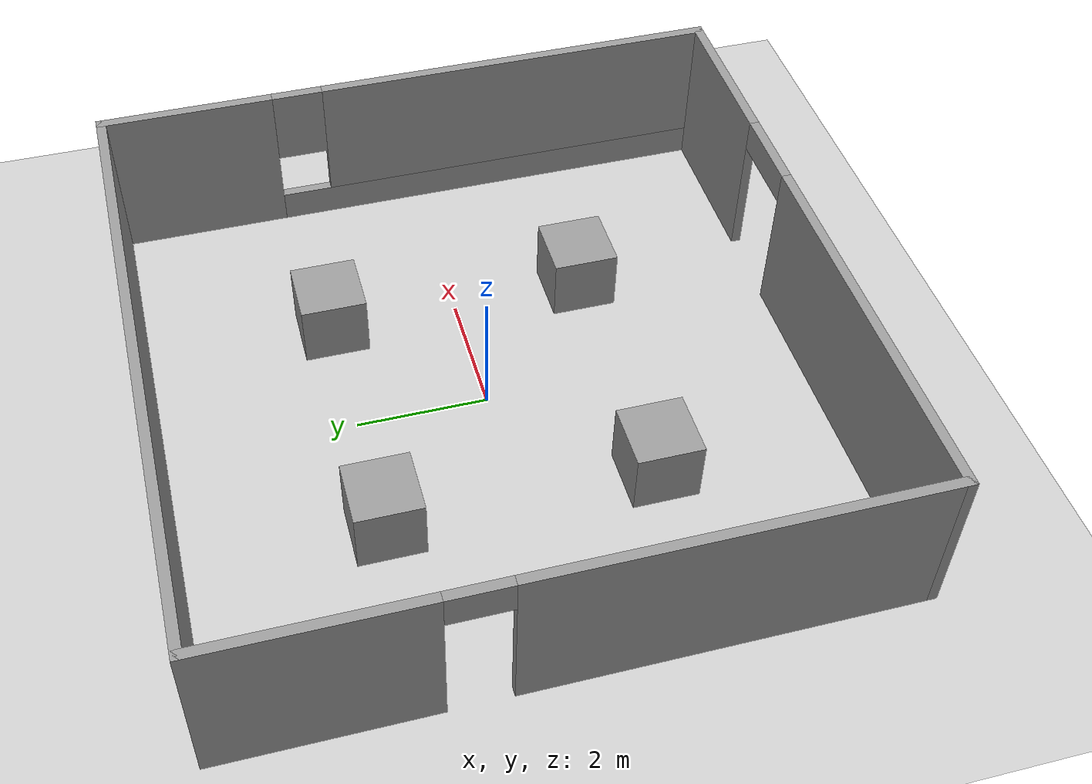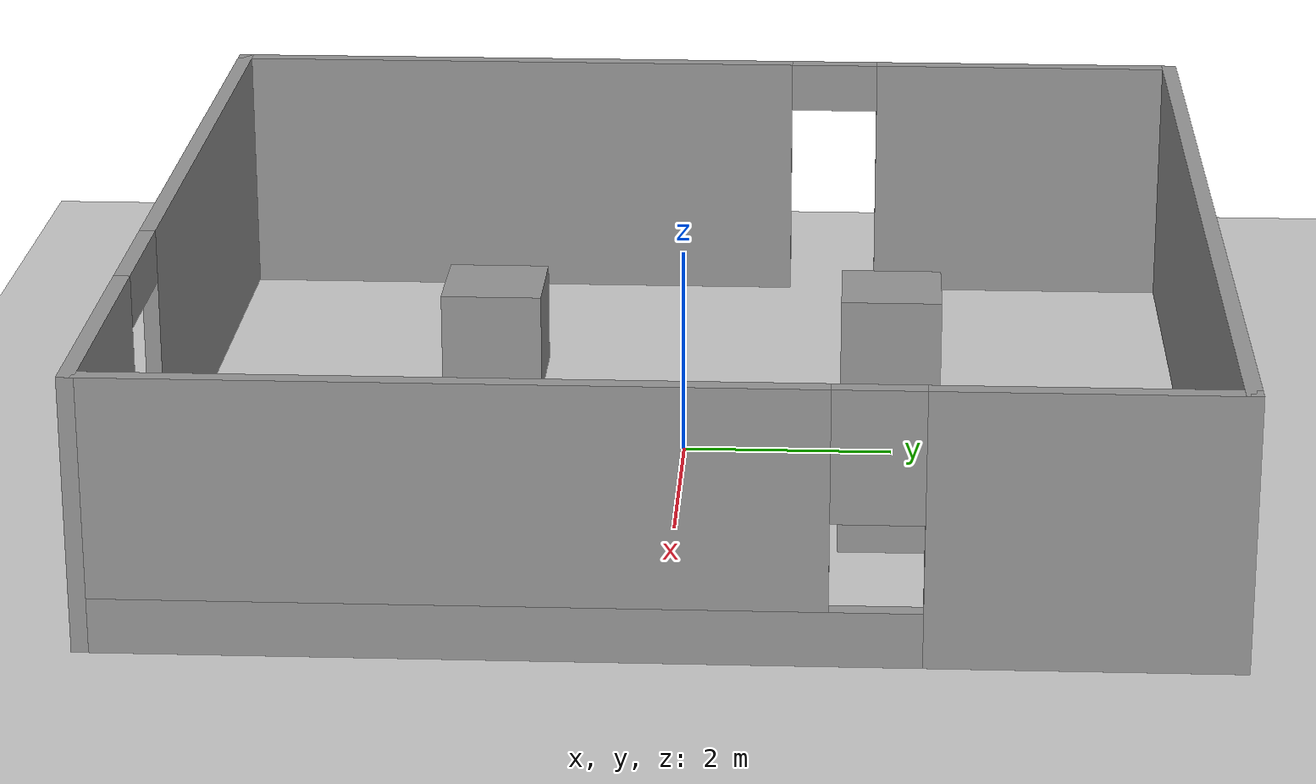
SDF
<sdf version="1.7">
 <world name="default">
  <light name="sun" type="directional">
   <pose>0 0 10 0 -0 0</pose>
   <diffuse>0.8 0.8 0.8 1</diffuse>
   <specular>0.2 0.2 0.2 1</specular>
   <attenuation>
    <range>1000</range>
    <constant>0.9</constant>
    <linear>0.01</linear>
    <quadratic>0.001</quadratic>
   </attenuation>
   <direction>-0.5 0.1 -0.9</direction>
   <spot><inner_angle>0</inner_angle><outer_angle>0</outer_angle><falloff>0</falloff></spot>
  </light>
  <model name="ground_plane">
   <static>1</static>
   <link name="link">
    <collision name="collision">
     <geometry><plane><normal>0 0 1</normal><size>100 100</size></plane></geometry>
     <surface><friction><ode><mu>1</mu><mu2>1</mu2></ode></friction></surface>
    </collision>
    <visual name="visual">
     <cast_shadows>0</cast_shadows>
     <geometry><plane><normal>0 0 1</normal><size>100 100</size></plane></geometry>
     <material>
      <script><uri>file://media/materials/scripts/gazebo.material</uri><name>Gazebo/Grey</name></script>
     </material>
    </visual>
   </link>
  </model>
  <gravity>0 0 -9.8</gravity>
  <magnetic_field>6e-06 2.3e-05 -4.2e-05</magnetic_field>
  <atmosphere type="adiabatic"/>
  <physics type="ode">
   <max_step_size>0.001</max_step_size>
   <real_time_factor>1</real_time_factor>
   <real_time_update_rate>1000</real_time_update_rate>
  </physics>
  <scene><ambient>0.4 0.4 0.4 1</ambient><background>0.7 0.7 0.7 1</background><shadows>1</shadows></scene>
  <spherical_coordinates>
   <surface_model>EARTH_WGS84</surface_model>
   <latitude_deg>0</latitude_deg>
   <longitude_deg>0</longitude_deg>
   <elevation>0</elevation>
   <heading_deg>0</heading_deg>
  </spherical_coordinates>
  <model name="wall">
   <link name="Wall_3">
    <pose>-4.925 0 0 0 -0 1.5708</pose>
    <visual name="Wall_3_Visual_0">
     <pose>-2.03364 0 1.25 0 -0 0</pose>
     <geometry><box><size>5.93272 0.15 2.5</size></box></geometry>
     <material>
      <script><uri>file://media/materials/scripts/gazebo.material</uri><name>Gazebo/Grey</name></script>
      <ambient>1 1 1 1</ambient>
     </material>
     <meta><layer>0</layer></meta>
    </visual>
    <collision name="Wall_3_Collision_0">
     <geometry><box><size>5.93272 0.15 2.5</size></box></geometry>
     <pose>-2.03364 0 1.25 0 -0 0</pose>
    </collision>
    <visual name="Wall_3_Visual_1">
     <pose>3.41636 0 1.25 0 -0 0</pose>
     <geometry><box><size>3.16728 0.15 2.5</size></box></geometry>
     <material>
      <script><uri>file://media/materials/scripts/gazebo.material</uri><name>Gazebo/Grey</name></script>
      <ambient>1 1 1 1</ambient>
     </material>
     <meta><layer>0</layer></meta>
    </visual>
    <collision name="Wall_3_Collision_1">
     <geometry><box><size>3.16728 0.15 2.5</size></box></geometry>
     <pose>3.41636 0 1.25 0 -0 0</pose>
    </collision>
    <visual name="Wall_3_Visual_2">
     <pose>1.38272 0 2.25 0 -0 0</pose>
     <geometry><box><size>0.9 0.15 0.5</size></box></geometry>
     <material>
      <script><uri>file://media/materials/scripts/gazebo.material</uri><name>Gazebo/Grey</name></script>
      <ambient>1 1 1 1</ambient>
     </material>
     <meta><layer>0</layer></meta>
    </visual>
    <collision name="Wall_3_Collision_2">
     <geometry><box><size>0.9 0.15 0.5</size></box></geometry>
     <pose>1.38272 0 2.25 0 -0 0</pose>
    </collision>
   </link>
   <link name="Wall_4">
    <collision name="Wall_4_Collision">
     <geometry><box><size>10 0.15 2.5</size></box></geometry>
     <pose>0 0 1.25 0 -0 0</pose>
    </collision>
    <visual name="Wall_4_Visual">
     <pose>0 0 1.25 0 -0 0</pose>
     <geometry><box><size>10 0.15 2.5</size></box></geometry>
     <material>
      <script><uri>file://media/materials/scripts/gazebo.material</uri><name>Gazebo/Grey</name></script>
      <ambient>1 1 1 1</ambient>
     </material>
     <meta><layer>0</layer></meta>
    </visual>
    <pose>0 4.925 0 0 -0 0</pose>
   </link>
   <link name="Wall_5">
    <pose>4.925 0 0 0 -0 -1.5708</pose>
    <visual name="Wall_5_Visual_0">
     <pose>-3.62315 0 1.25 0 -0 0</pose>
     <geometry><box><size>2.75371 0.15 2.5</size></box></geometry>
     <material>
      <script><uri>file://media/materials/scripts/gazebo.material</uri><name>Gazebo/Grey</name></script>
      <ambient>1 1 1 1</ambient>
     </material>
     <meta><layer>0</layer></meta>
    </visual>
    <collision name="Wall_5_Collision_0">
     <geometry><box><size>2.75371 0.15 2.5</size></box></geometry>
     <pose>-3.62315 0 1.25 0 -0 0</pose>
    </collision>
    <visual name="Wall_5_Visual_1">
     <pose>1.37685 0 0.25 0 -0 0</pose>
     <geometry><box><size>7.24629 0.15 0.5</size></box></geometry>
     <material>
      <script><uri>file://media/materials/scripts/gazebo.material</uri><name>Gazebo/Grey</name></script>
      <ambient>1 1 1 1</ambient>
     </material>
     <meta><layer>0</layer></meta>
    </visual>
    <collision name="Wall_5_Collision_1">
     <geometry><box><size>7.24629 0.15 0.5</size></box></geometry>
     <pose>1.37685 0 0.25 0 -0 0</pose>
    </collision>
    <visual name="Wall_5_Visual_2">
     <pose>1.77685 0 1.5 0 -0 0</pose>
     <geometry><box><size>6.44629 0.15 2</size></box></geometry>
     <material>
      <script><uri>file://media/materials/scripts/gazebo.material</uri><name>Gazebo/Grey</name></script>
      <ambient>1 1 1 1</ambient>
     </material>
     <meta><layer>0</layer></meta>
    </visual>
    <collision name="Wall_5_Collision_2">
     <geometry><box><size>6.44629 0.15 2</size></box></geometry>
     <pose>1.77685 0 1.5 0 -0 0</pose>
    </collision>
    <visual name="Wall_5_Visual_3">
     <pose>-1.84629 0 1.9 0 -0 0</pose>
     <geometry><box><size>0.8 0.15 1.2</size></box></geometry>
     <material>
      <script><uri>file://media/materials/scripts/gazebo.material</uri><name>Gazebo/Grey</name></script>
      <ambient>1 1 1 1</ambient>
     </material>
     <meta><layer>0</layer></meta>
    </visual>
    <collision name="Wall_5_Collision_3">
     <geometry><box><size>0.8 0.15 1.2</size></box></geometry>
     <pose>-1.84629 0 1.9 0 -0 0</pose>
    </collision>
   </link>
   <link name="Wall_6">
    <pose>0 -4.925 0 0 -0 3.14159</pose>
    <visual name="Wall_6_Visual_0">
     <pose>-3.68838 0 1.25 0 -0 0</pose>
     <geometry><box><size>2.62325 0.15 2.5</size></box></geometry>
     <material>
      <script><uri>file://media/materials/scripts/gazebo.material</uri><name>Gazebo/Grey</name></script>
      <ambient>1 1 1 1</ambient>
     </material>
     <meta><layer>0</layer></meta>
    </visual>
    <collision name="Wall_6_Collision_0">
     <geometry><box><size>2.62325 0.15 2.5</size></box></geometry>
     <pose>-3.68838 0 1.25 0 -0 0</pose>
    </collision>
    <visual name="Wall_6_Visual_1">
     <pose>1.962 0 1.25 0 -0 0</pose>
     <geometry><box><size>6.076 0.15 2.5</size></box></geometry>
     <material>
      <script><uri>file://media/materials/scripts/gazebo.material</uri><name>Gazebo/Grey</name></script>
      <ambient>1 1 1 1</ambient>
     </material>
     <meta><layer>0</layer></meta>
    </visual>
    <collision name="Wall_6_Collision_1">
     <geometry><box><size>6.076 0.15 2.5</size></box></geometry>
     <pose>1.962 0 1.25 0 -0 0</pose>
    </collision>
    <visual name="Wall_6_Visual_2">
     <pose>-1.72637 0 2.25 0 -0 0</pose>
     <geometry><box><size>1.30076 0.15 0.5</size></box></geometry>
     <material>
      <script><uri>file://media/materials/scripts/gazebo.material</uri><name>Gazebo/Grey</name></script>
      <ambient>1 1 1 1</ambient>
     </material>
     <meta><layer>0</layer></meta>
    </visual>
    <collision name="Wall_6_Collision_2">
     <geometry><box><size>1.30076 0.15 0.5</size></box></geometry>
     <pose>-1.72637 0 2.25 0 -0 0</pose>
    </collision>
   </link>
   <static>1</static>
  </model>
  <model name="unit_box">
   <pose>2 -2 0.5 -0 -0 -1e-05</pose>
   <link name="link">
    <inertial>
     <mass>1</mass>
     <inertia>
      <ixx>0.166667</ixx>
      <ixy>0</ixy>
      <ixz>0</ixz>
      <iyy>0.166667</iyy>
      <iyz>0</iyz>
      <izz>0.166667</izz>
     </inertia>
    </inertial>
    <collision name="collision"><geometry><box><size>1 1 1</size></box></geometry></collision>
    <visual name="visual">
     <geometry><box><size>1 1 1</size></box></geometry>
     <material>
      <script><name>Gazebo/Grey</name><uri>file://media/materials/scripts/gazebo.material</uri></script>
     </material>
    </visual>
   </link>
  </model>
  <model name="unit_box_0">
   <pose>2 2 0.5 0 -0 0</pose>
   <link name="link">
    <inertial>
     <mass>1</mass>
     <inertia>
      <ixx>0.166667</ixx>
      <ixy>0</ixy>
      <ixz>0</ixz>
      <iyy>0.166667</iyy>
      <iyz>0</iyz>
      <izz>0.166667</izz>
     </inertia>
    </inertial>
    <collision name="collision"><geometry><box><size>1 1 1</size></box></geometry></collision>
    <visual name="visual">
     <geometry><box><size>1 1 1</size></box></geometry>
     <material>
      <script><name>Gazebo/Grey</name><uri>file://media/materials/scripts/gazebo.material</uri></script>
     </material>
    </visual>
   </link>
  </model>
  <model name="unit_box_1">
   <pose>-2 2 0.5 0 -0 0</pose>
   <link name="link">
    <inertial>
     <mass>1</mass>
     <inertia>
      <ixx>0.166667</ixx>
      <ixy>0</ixy>
      <ixz>0</ixz>
      <iyy>0.166667</iyy>
      <iyz>0</iyz>
      <izz>0.166667</izz>
     </inertia>
    </inertial>
    <collision name="collision"><geometry><box><size>1 1 1</size></box></geometry></collision>
    <visual name="visual">
     <geometry><box><size>1 1 1</size></box></geometry>
     <material>
      <script><name>Gazebo/Grey</name><uri>file://media/materials/scripts/gazebo.material</uri></script>
     </material>
    </visual>
   </link>
  </model>
  <model name="unit_box_2">
   <pose>-2 -2 0.5 0 -0 0</pose>
   <link name="link">
    <inertial>
     <mass>1</mass>
     <inertia>
      <ixx>0.166667</ixx>
      <ixy>0</ixy>
      <ixz>0</ixz>
      <iyy>0.166667</iyy>
      <iyz>0</iyz>
      <izz>0.166667</izz>
     </inertia>
    </inertial>
    <collision name="collision"><geometry><box><size>1 1 1</size></box></geometry></collision>
    <visual name="visual">
     <geometry><box><size>1 1 1</size></box></geometry>
     <material>
      <script><name>Gazebo/Grey</name><uri>file://media/materials/scripts/gazebo.material</uri></script>
     </material>
    </visual>
   </link>
  </model>
 </world>
</sdf>
